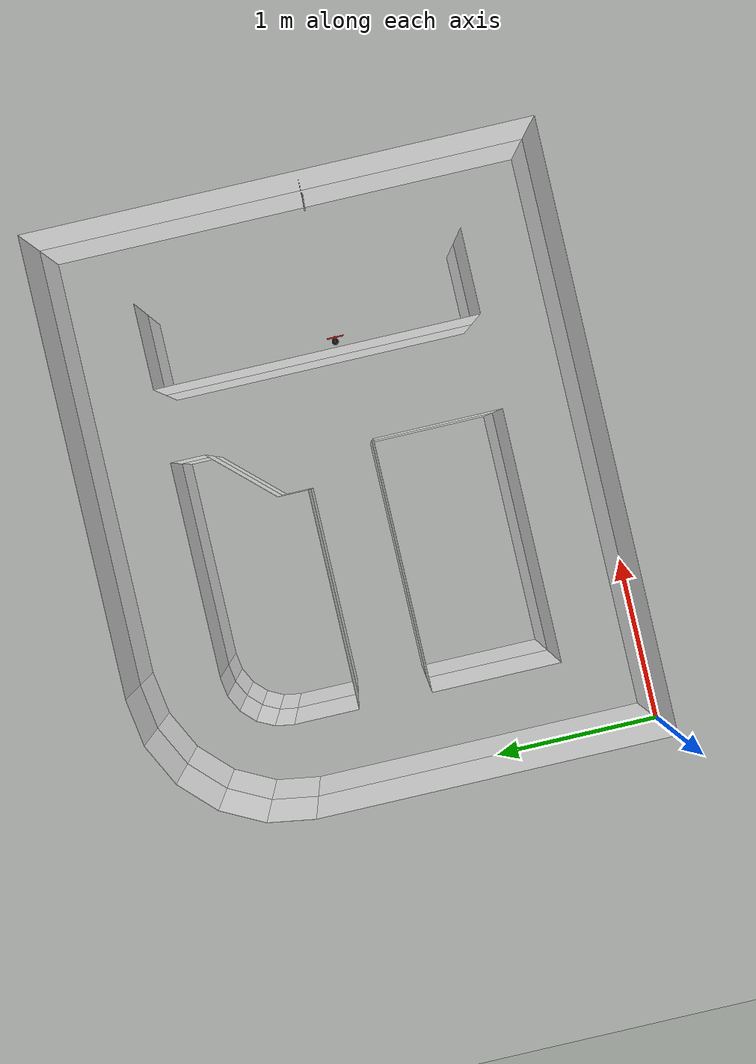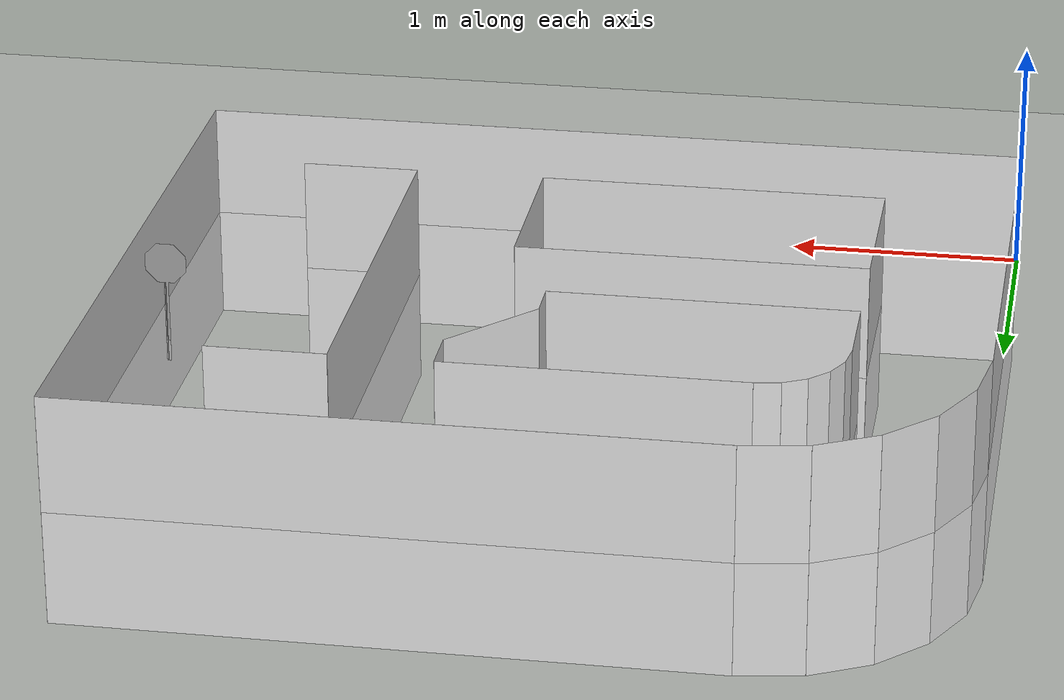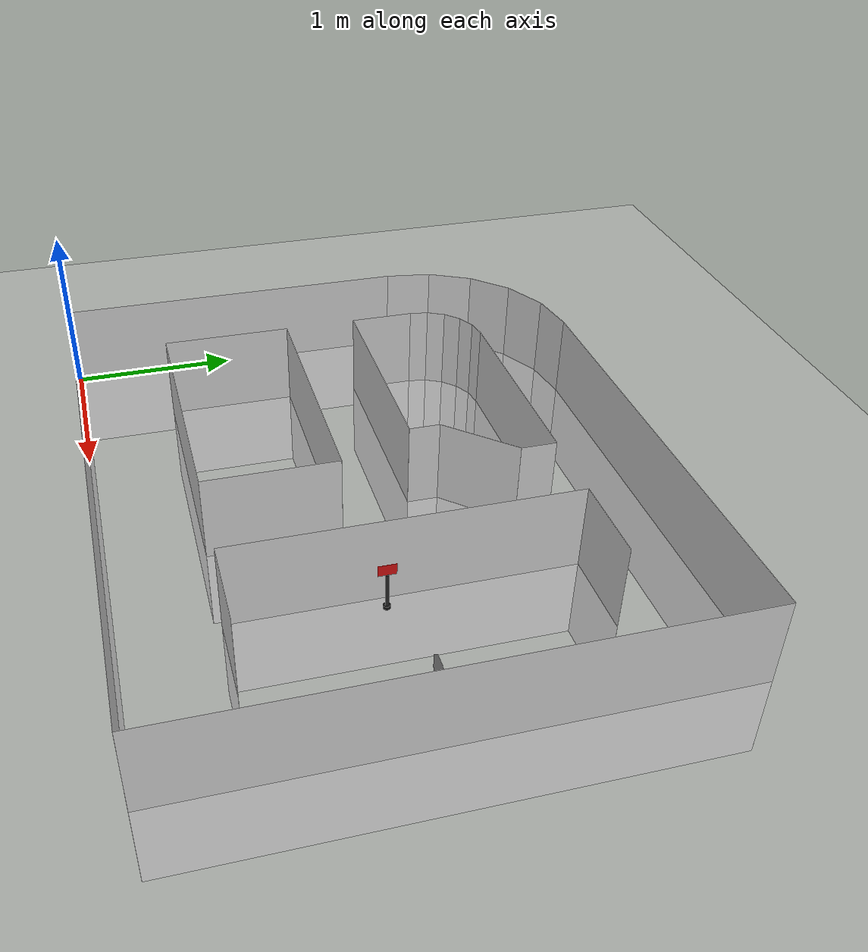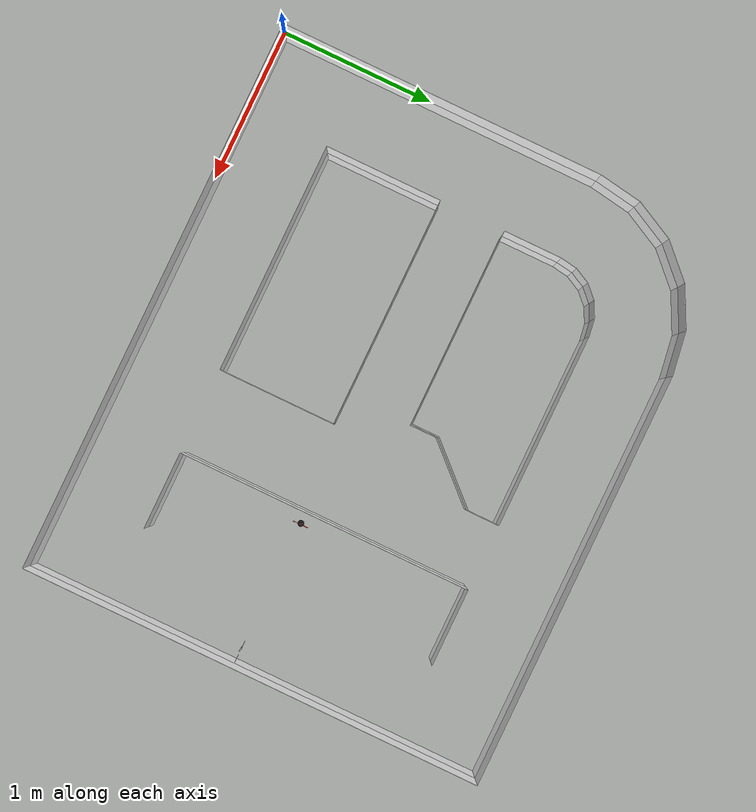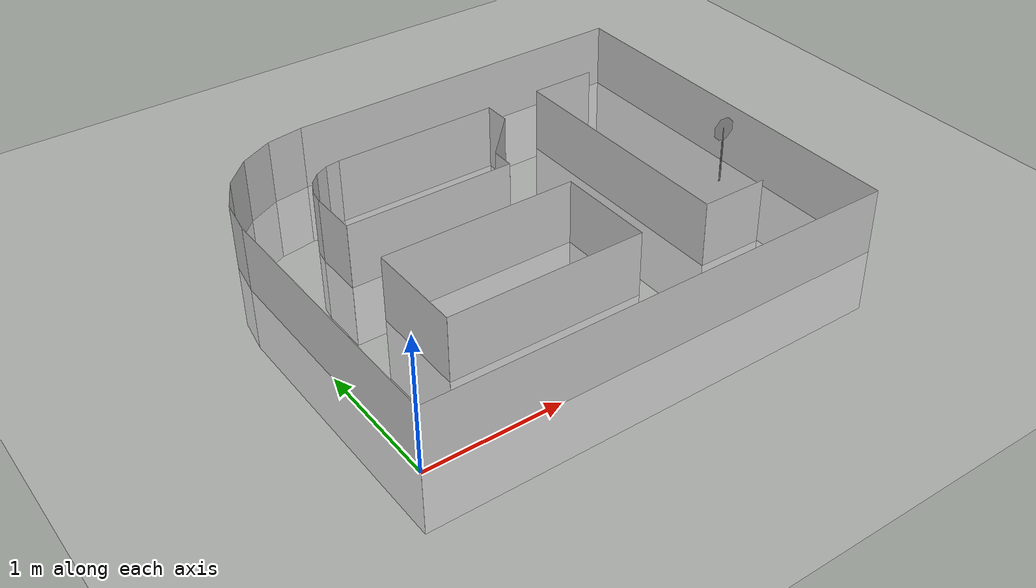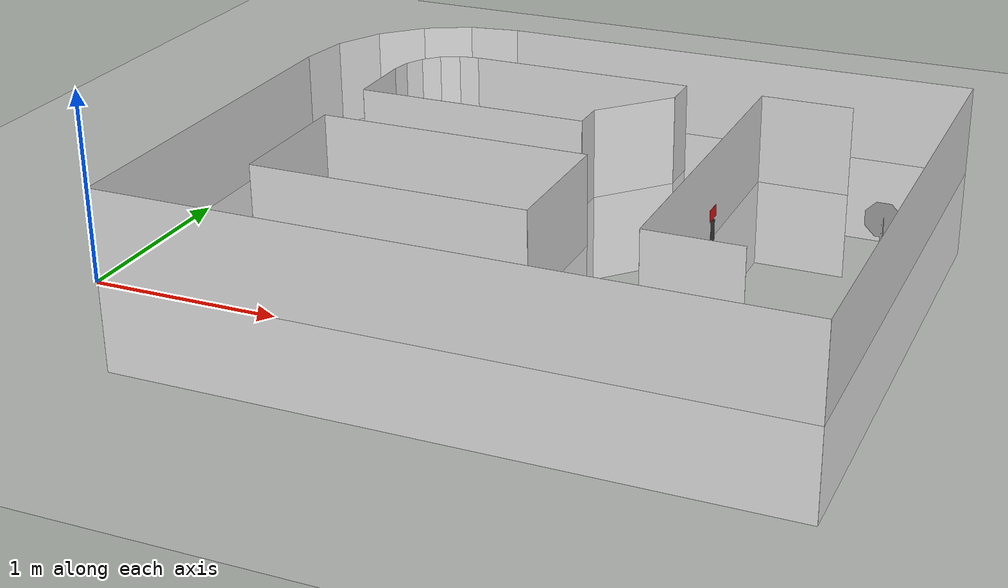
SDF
<sdf version='1.9'>
  <world name='default'>

    <light name='sun' type='directional'>
      <cast_shadows>1</cast_shadows>
      <pose>0 0 10 0 -0 0</pose>
      <diffuse>0.8 0.8 0.8 1</diffuse>
      <specular>0.2 0.2 0.2 1</specular>
      <attenuation>
        <range>1000</range>
        <constant>0.9</constant>
        <linear>0.01</linear>
        <quadratic>0.001</quadratic>
      </attenuation>
      <direction>0.5 -0.5 -1</direction>
    </light>

    <include>
      <uri>https://fuel.gazebosim.org/1.0/OpenRobotics/models/Ground Plane</uri>
    </include>

    <model name='wall_0'>
      <static>1</static>
      <link name='link'>
        <collision name='collision'>
          <geometry>
            <box>
              <size>2.13360426721 0.001 1</size>
            </box>
          </geometry>
        </collision>
        <visual name='visual'>
          <geometry>
            <box>
              <size>2.13360426721 0.001 1</size>
            </box>
          </geometry>
          <material>
            <ambient>1 1 1 1</ambient>
            <diffuse>1 1 1 1</diffuse>
            <specular>.1 .1 .1 .5</specular>
          </material>
        </visual>
      </link>
      <pose>0.0 1.0668021336 0 0 0 1.57079632679</pose>
    </model>

    <model name='wall_1'>
      <static>1</static>
      <link name='link'>
        <collision name='collision'>
          <geometry>
            <box>
              <size>0.286087921841 0.001 1</size>
            </box>
          </geometry>
        </collision>
        <visual name='visual'>
          <geometry>
            <box>
              <size>0.286087921841 0.001 1</size>
            </box>
          </geometry>
          <material>
            <ambient>1 1 1 1</ambient>
            <diffuse>1 1 1 1</diffuse>
            <specular>.1 .1 .1 .5</specular>
          </material>
        </visual>
      </link>
      <pose>0.0223770055039 2.2748871196 0 0 0 1.41371669412</pose>
    </model>

    <model name='wall_2'>
      <static>1</static>
      <link name='link'>
        <collision name='collision'>
          <geometry>
            <box>
              <size>0.286087921841 0.001 1</size>
            </box>
          </geometry>
        </collision>
        <visual name='visual'>
          <geometry>
            <box>
              <size>0.286087921841 0.001 1</size>
            </box>
          </geometry>
          <material>
            <ambient>1 1 1 1</ambient>
            <diffuse>1 1 1 1</diffuse>
            <specular>.1 .1 .1 .5</specular>
          </material>
        </visual>
      </link>
      <pose>0.109694610311 2.54362307442 0 0 0 1.09955742876</pose>
    </model>

    <model name='wall_3'>
      <static>1</static>
      <link name='link'>
        <collision name='collision'>
          <geometry>
            <box>
              <size>0.286087921841 0.001 1</size>
            </box>
          </geometry>
        </collision>
        <visual name='visual'>
          <geometry>
            <box>
              <size>0.286087921841 0.001 1</size>
            </box>
          </geometry>
          <material>
            <ambient>1 1 1 1</ambient>
            <diffuse>1 1 1 1</diffuse>
            <specular>.1 .1 .1 .5</specular>
          </material>
        </visual>
      </link>
      <pose>0.275782564389 2.77222353162 0 0 0 0.785398163397</pose>
    </model>

    <model name='wall_4'>
      <static>1</static>
      <link name='link'>
        <collision name='collision'>
          <geometry>
            <box>
              <size>0.286087921841 0.001 1</size>
            </box>
          </geometry>
        </collision>
        <visual name='visual'>
          <geometry>
            <box>
              <size>0.286087921841 0.001 1</size>
            </box>
          </geometry>
          <material>
            <ambient>1 1 1 1</ambient>
            <diffuse>1 1 1 1</diffuse>
            <specular>.1 .1 .1 .5</specular>
          </material>
        </visual>
      </link>
      <pose>0.50438302159 2.9383114857 0 0 0 0.471238898038</pose>
    </model>

    <model name='wall_5'>
      <static>1</static>
      <link name='link'>
        <collision name='collision'>
          <geometry>
            <box>
              <size>0.286087921841 0.001 1</size>
            </box>
          </geometry>
        </collision>
        <visual name='visual'>
          <geometry>
            <box>
              <size>0.286087921841 0.001 1</size>
            </box>
          </geometry>
          <material>
            <ambient>1 1 1 1</ambient>
            <diffuse>1 1 1 1</diffuse>
            <specular>.1 .1 .1 .5</specular>
          </material>
        </visual>
      </link>
      <pose>0.77311897641 3.02562909051 0 0 0 0.157079632679</pose>
    </model>

    <model name='wall_6'>
      <static>1</static>
      <link name='link'>
        <collision name='collision'>
          <geometry>
            <box>
              <size>2.74320548641 0.001 1</size>
            </box>
          </geometry>
        </collision>
        <visual name='visual'>
          <geometry>
            <box>
              <size>2.74320548641 0.001 1</size>
            </box>
          </geometry>
          <material>
            <ambient>1 1 1 1</ambient>
            <diffuse>1 1 1 1</diffuse>
            <specular>.1 .1 .1 .5</specular>
          </material>
        </visual>
      </link>
      <pose>2.28600457201 3.04800609601 0 0 0 0.0</pose>
    </model>

    <model name='wall_7'>
      <static>1</static>
      <link name='link'>
        <collision name='collision'>
          <geometry>
            <box>
              <size>3.04800609601 0.001 1</size>
            </box>
          </geometry>
        </collision>
        <visual name='visual'>
          <geometry>
            <box>
              <size>3.04800609601 0.001 1</size>
            </box>
          </geometry>
          <material>
            <ambient>1 1 1 1</ambient>
            <diffuse>1 1 1 1</diffuse>
            <specular>.1 .1 .1 .5</specular>
          </material>
        </visual>
      </link>
      <pose>3.65760731521 1.52400304801 0 0 0 -1.57079632679</pose>
    </model>

    <model name='wall_8'>
      <static>1</static>
      <link name='link'>
        <collision name='collision'>
          <geometry>
            <box>
              <size>3.65760731521 0.001 1</size>
            </box>
          </geometry>
        </collision>
        <visual name='visual'>
          <geometry>
            <box>
              <size>3.65760731521 0.001 1</size>
            </box>
          </geometry>
          <material>
            <ambient>1 1 1 1</ambient>
            <diffuse>1 1 1 1</diffuse>
            <specular>.1 .1 .1 .5</specular>
          </material>
        </visual>
      </link>
      <pose>1.82880365761 0.0 0 0 0 3.14159265359</pose>
    </model>

    <model name='wall_9'>
      <static>1</static>
      <link name='link'>
        <collision name='collision'>
          <geometry>
            <box>
              <size>0.762001524003 0.001 1</size>
            </box>
          </geometry>
        </collision>
        <visual name='visual'>
          <geometry>
            <box>
              <size>0.762001524003 0.001 1</size>
            </box>
          </geometry>
          <material>
            <ambient>1 1 1 1</ambient>
            <diffuse>1 1 1 1</diffuse>
            <specular>.1 .1 .1 .5</specular>
          </material>
        </visual>
      </link>
      <pose>0.558801117602 0.939801879604 0 0 0 1.57079632679</pose>
    </model>

    <model name='wall_10'>
      <static>1</static>
      <link name='link'>
        <collision name='collision'>
          <geometry>
            <box>
              <size>1.49860299721 0.001 1</size>
            </box>
          </geometry>
        </collision>
        <visual name='visual'>
          <geometry>
            <box>
              <size>1.49860299721 0.001 1</size>
            </box>
          </geometry>
          <material>
            <ambient>1 1 1 1</ambient>
            <diffuse>1 1 1 1</diffuse>
            <specular>.1 .1 .1 .5</specular>
          </material>
        </visual>
      </link>
      <pose>1.30810261621 1.32080264161 0 0 0 0.0</pose>
    </model>

    <model name='wall_11'>
      <static>1</static>
      <link name='link'>
        <collision name='collision'>
          <geometry>
            <box>
              <size>0.762001524003 0.001 1</size>
            </box>
          </geometry>
        </collision>
        <visual name='visual'>
          <geometry>
            <box>
              <size>0.762001524003 0.001 1</size>
            </box>
          </geometry>
          <material>
            <ambient>1 1 1 1</ambient>
            <diffuse>1 1 1 1</diffuse>
            <specular>.1 .1 .1 .5</specular>
          </material>
        </visual>
      </link>
      <pose>2.05740411481 0.939801879604 0 0 0 -1.57079632679</pose>
    </model>

    <model name='wall_12'>
      <static>1</static>
      <link name='link'>
        <collision name='collision'>
          <geometry>
            <box>
              <size>1.49860299721 0.001 1</size>
            </box>
          </geometry>
        </collision>
        <visual name='visual'>
          <geometry>
            <box>
              <size>1.49860299721 0.001 1</size>
            </box>
          </geometry>
          <material>
            <ambient>1 1 1 1</ambient>
            <diffuse>1 1 1 1</diffuse>
            <specular>.1 .1 .1 .5</specular>
          </material>
        </visual>
      </link>
      <pose>1.30810261621 0.558801117602 0 0 0 3.14159265359</pose>
    </model>

    <model name='wall_13'>
      <static>1</static>
      <link name='link'>
        <collision name='collision'>
          <geometry>
            <box>
              <size>0.381000762002 0.001 1</size>
            </box>
          </geometry>
        </collision>
        <visual name='visual'>
          <geometry>
            <box>
              <size>0.381000762002 0.001 1</size>
            </box>
          </geometry>
          <material>
            <ambient>1 1 1 1</ambient>
            <diffuse>1 1 1 1</diffuse>
            <specular>.1 .1 .1 .5</specular>
          </material>
        </visual>
      </link>
      <pose>0.558801117602 1.94310388621 0 0 0 1.57079632679</pose>
    </model>

    <model name='wall_14'>
      <static>1</static>
      <link name='link'>
        <collision name='collision'>
          <geometry>
            <box>
              <size>0.111256414049 0.001 1</size>
            </box>
          </geometry>
        </collision>
        <visual name='visual'>
          <geometry>
            <box>
              <size>0.111256414049 0.001 1</size>
            </box>
          </geometry>
          <material>
            <ambient>1 1 1 1</ambient>
            <diffuse>1 1 1 1</diffuse>
            <specular>.1 .1 .1 .5</specular>
          </material>
        </visual>
      </link>
      <pose>0.567503286409 2.1885475987 0 0 0 1.41371669412</pose>
    </model>

    <model name='wall_15'>
      <static>1</static>
      <link name='link'>
        <collision name='collision'>
          <geometry>
            <box>
              <size>0.111256414049 0.001 1</size>
            </box>
          </geometry>
        </collision>
        <visual name='visual'>
          <geometry>
            <box>
              <size>0.111256414049 0.001 1</size>
            </box>
          </geometry>
          <material>
            <ambient>1 1 1 1</ambient>
            <diffuse>1 1 1 1</diffuse>
            <specular>.1 .1 .1 .5</specular>
          </material>
        </visual>
      </link>
      <pose>0.601460132723 2.29305602557 0 0 0 1.09955742876</pose>
    </model>

    <model name='wall_16'>
      <static>1</static>
      <link name='link'>
        <collision name='collision'>
          <geometry>
            <box>
              <size>0.111256414049 0.001 1</size>
            </box>
          </geometry>
        </collision>
        <visual name='visual'>
          <geometry>
            <box>
              <size>0.111256414049 0.001 1</size>
            </box>
          </geometry>
          <material>
            <ambient>1 1 1 1</ambient>
            <diffuse>1 1 1 1</diffuse>
            <specular>.1 .1 .1 .5</specular>
          </material>
        </visual>
      </link>
      <pose>0.666049892642 2.38195620337 0 0 0 0.785398163397</pose>
    </model>

    <model name='wall_17'>
      <static>1</static>
      <link name='link'>
        <collision name='collision'>
          <geometry>
            <box>
              <size>0.111256414049 0.001 1</size>
            </box>
          </geometry>
        </collision>
        <visual name='visual'>
          <geometry>
            <box>
              <size>0.111256414049 0.001 1</size>
            </box>
          </geometry>
          <material>
            <ambient>1 1 1 1</ambient>
            <diffuse>1 1 1 1</diffuse>
            <specular>.1 .1 .1 .5</specular>
          </material>
        </visual>
      </link>
      <pose>0.754950070443 2.44654596329 0 0 0 0.471238898038</pose>
    </model>

    <model name='wall_18'>
      <static>1</static>
      <link name='link'>
        <collision name='collision'>
          <geometry>
            <box>
              <size>0.111256414049 0.001 1</size>
            </box>
          </geometry>
        </collision>
        <visual name='visual'>
          <geometry>
            <box>
              <size>0.111256414049 0.001 1</size>
            </box>
          </geometry>
          <material>
            <ambient>1 1 1 1</ambient>
            <diffuse>1 1 1 1</diffuse>
            <specular>.1 .1 .1 .5</specular>
          </material>
        </visual>
      </link>
      <pose>0.859458497317 2.4805028096 0 0 0 0.157079632679</pose>
    </model>

    <model name='wall_19'>
      <static>1</static>
      <link name='link'>
        <collision name='collision'>
          <geometry>
            <box>
              <size>1.27000254001 0.001 1</size>
            </box>
          </geometry>
        </collision>
        <visual name='visual'>
          <geometry>
            <box>
              <size>1.27000254001 0.001 1</size>
            </box>
          </geometry>
          <material>
            <ambient>1 1 1 1</ambient>
            <diffuse>1 1 1 1</diffuse>
            <specular>.1 .1 .1 .5</specular>
          </material>
        </visual>
      </link>
      <pose>1.54940309881 2.48920497841 0 0 0 0.0</pose>
    </model>

    <model name='wall_20'>
      <static>1</static>
      <link name='link'>
        <collision name='collision'>
          <geometry>
            <box>
              <size>0.203200406401 0.001 1</size>
            </box>
          </geometry>
        </collision>
        <visual name='visual'>
          <geometry>
            <box>
              <size>0.203200406401 0.001 1</size>
            </box>
          </geometry>
          <material>
            <ambient>1 1 1 1</ambient>
            <diffuse>1 1 1 1</diffuse>
            <specular>.1 .1 .1 .5</specular>
          </material>
        </visual>
      </link>
      <pose>2.18440436881 2.38760477521 0 0 0 -1.57079632679</pose>
    </model>

    <model name='wall_21'>
      <static>1</static>
      <link name='link'>
        <collision name='collision'>
          <geometry>
            <box>
              <size>0.485267289168 0.001 1</size>
            </box>
          </geometry>
        </collision>
        <visual name='visual'>
          <geometry>
            <box>
              <size>0.485267289168 0.001 1</size>
            </box>
          </geometry>
          <material>
            <ambient>1 1 1 1</ambient>
            <diffuse>1 1 1 1</diffuse>
            <specular>.1 .1 .1 .5</specular>
          </material>
        </visual>
      </link>
      <pose>2.01930403861 2.10820421641 0 0 0 -2.31917437432</pose>
    </model>

    <model name='wall_22'>
      <static>1</static>
      <link name='link'>
        <collision name='collision'>
          <geometry>
            <box>
              <size>0.177800355601 0.001 1</size>
            </box>
          </geometry>
        </collision>
        <visual name='visual'>
          <geometry>
            <box>
              <size>0.177800355601 0.001 1</size>
            </box>
          </geometry>
          <material>
            <ambient>1 1 1 1</ambient>
            <diffuse>1 1 1 1</diffuse>
            <specular>.1 .1 .1 .5</specular>
          </material>
        </visual>
      </link>
      <pose>1.85420370841 1.84150368301 0 0 0 -1.57079632679</pose>
    </model>

    <model name='wall_23'>
      <static>1</static>
      <link name='link'>
        <collision name='collision'>
          <geometry>
            <box>
              <size>1.29540259081 0.001 1</size>
            </box>
          </geometry>
        </collision>
        <visual name='visual'>
          <geometry>
            <box>
              <size>1.29540259081 0.001 1</size>
            </box>
          </geometry>
          <material>
            <ambient>1 1 1 1</ambient>
            <diffuse>1 1 1 1</diffuse>
            <specular>.1 .1 .1 .5</specular>
          </material>
        </visual>
      </link>
      <pose>1.206502413 1.75260350521 0 0 0 3.14159265359</pose>
    </model>

    <model name='wall_24'>
      <static>1</static>
      <link name='link'>
        <collision name='collision'>
          <geometry>
            <box>
              <size>0.508001016002 0.001 1</size>
            </box>
          </geometry>
        </collision>
        <visual name='visual'>
          <geometry>
            <box>
              <size>0.508001016002 0.001 1</size>
            </box>
          </geometry>
          <material>
            <ambient>1 1 1 1</ambient>
            <diffuse>1 1 1 1</diffuse>
            <specular>.1 .1 .1 .5</specular>
          </material>
        </visual>
      </link>
      <pose>2.87020574041 2.48920497841 0 0 0 0.0</pose>
    </model>

    <model name='wall_25'>
      <static>1</static>
      <link name='link'>
        <collision name='collision'>
          <geometry>
            <box>
              <size>0.508001016002 0.001 1</size>
            </box>
          </geometry>
        </collision>
        <visual name='visual'>
          <geometry>
            <box>
              <size>0.508001016002 0.001 1</size>
            </box>
          </geometry>
          <material>
            <ambient>1 1 1 1</ambient>
            <diffuse>1 1 1 1</diffuse>
            <specular>.1 .1 .1 .5</specular>
          </material>
        </visual>
      </link>
      <pose>2.87020574041 0.558801117602 0 0 0 3.14159265359</pose>
    </model>

    <model name='wall_26'>
      <static>1</static>
      <link name='link'>
        <collision name='collision'>
          <geometry>
            <box>
              <size>1.93040386081 0.001 1</size>
            </box>
          </geometry>
        </collision>
        <visual name='visual'>
          <geometry>
            <box>
              <size>1.93040386081 0.001 1</size>
            </box>
          </geometry>
          <material>
            <ambient>1 1 1 1</ambient>
            <diffuse>1 1 1 1</diffuse>
            <specular>.1 .1 .1 .5</specular>
          </material>
        </visual>
      </link>
      <pose>2.61620523241 1.52400304801 0 0 0 1.57079632679</pose>
    </model>

    <model name='Stop Sign'>
      <link name='link'>
        <collision name='stopsign_collision'>
          <geometry>
            <mesh>
              <uri>stop_sign/stopsign.obj</uri>
              <scale>.3 .3 .3</scale>
            </mesh>
          </geometry>
        </collision>
        <visual name='visual'>
          <geometry>
            <mesh>
              <uri>stop_sign/stopsign.obj</uri>
              <scale>.3 .3 .3</scale>
            </mesh>
          </geometry>
        </visual>
        <self_collide>0</self_collide>
        <inertial>
          <inertia>
            <ixx>1</ixx>
            <ixy>0</ixy>
            <ixz>0</ixz>
            <iyy>1</iyy>
            <iyz>0</iyz>
            <izz>1</izz>
          </inertia>
          <mass>1</mass>
        </inertial>
        <kinematic>0</kinematic>
        <gravity>1</gravity>
      </link>
      <pose>3.55 1.4 -.1 1.570796 0 3.141593</pose>
    </model>

    <model name='flag'>
      <link name='plate'>
        <pose>0 0 0.2425 0 0 0</pose>
        <collision name='collision'>
          <geometry>
            <box>
              <size>0.001 0.1 0.065</size>
            </box>
          </geometry>
          <max_contacts>10</max_contacts>
          <surface>
            <contact>
              <ode/>
            </contact>
            <bounce/>
            <friction>
              <torsional>
                <ode/>
              </torsional>
              <ode>
                <mu>1</mu>
                <mu2>1</mu2>
              </ode>
            </friction>
          </surface>
        </collision>
        <visual name='visual'>
          <geometry>
            <box>
              <size>0.001 0.1 0.065</size>
            </box>
          </geometry>
          <material>
            <ambient>1 0.1 0.1 1</ambient>
            <diffuse>1 0.1 0.1 1</diffuse>
            <specular>0.1 0.1 0.1 1</specular>
          </material>
        </visual>
        <self_collide>0</self_collide>
        <inertial>
          <inertia>
            <ixx>0.1</ixx>
            <ixy>0</ixy>
            <ixz>0</ixz>
            <iyy>0.1</iyy>
            <iyz>0</iyz>
            <izz>0.1</izz>
          </inertia>
          <mass>0.1</mass>
        </inertial>
        <kinematic>0</kinematic>
        <gravity>1</gravity>
      </link>
      <link name='pole'>
        <pose>0 0 0.11 0 0 0</pose>
        <collision name='collision'>
          <geometry>
            <cylinder>
              <radius>0.01</radius>
              <length>0.2</length>
            </cylinder>
          </geometry>
          <max_contacts>10</max_contacts>
          <surface>
            <contact>
              <ode/>
            </contact>
            <bounce/>
            <friction>
              <torsional>
                <coefficient>1</coefficient>
              </torsional>
              <ode>
                <mu>1</mu>
                <mu2>1</mu2>
              </ode>
            </friction>
          </surface>
        </collision>
        <visual name='visual'>
          <geometry>
            <cylinder>
              <radius>0.01</radius>
              <length>0.2</length>
            </cylinder>
          </geometry>
          <material>
            <ambient>0.2 0.2 0.2 1</ambient>
            <diffuse>0.2 0.2 0.2 1</diffuse>
            <specular>0.2 0.2 0.2 1</specular>
          </material>
        </visual>
        <self_collide>0</self_collide>
        <inertial>
          <inertia>
            <ixx>1</ixx>
            <ixy>0</ixy>
            <ixz>0</ixz>
            <iyy>1</iyy>
            <iyz>0</iyz>
            <izz>1</izz>
          </inertia>
          <mass>1</mass>
        </inertial>
        <kinematic>0</kinematic>
        <gravity>1</gravity>
      </link>
      <link name='base'>
        <collision name='collision'>
          <geometry>
            <cylinder>
              <radius>0.02</radius>
              <length>0.02</length>
            </cylinder>
          </geometry>
          <max_contacts>10</max_contacts>
          <surface>
            <contact>
              <ode/>
            </contact>
            <bounce/>
            <friction>
              <torsional>
                <ode/>
              </torsional>
              <ode>
                <mu>0.01</mu>
                <mu2>0.01</mu2>
              </ode>
            </friction>
          </surface>
        </collision>
        <visual name='visual'>
          <geometry>
            <cylinder>
              <radius>0.02</radius>
              <length>0.02</length>
            </cylinder>
          </geometry>
          <material>
            <ambient>0.1 0.1 0.1 1</ambient>
            <diffuse>0.1 0.1 0.1 1</diffuse>
            <specular>0.01 0.01 0.01 1</specular>
          </material>
        </visual>
        <self_collide>0</self_collide>
        <inertial>
          <inertia>
            <ixx>0.1</ixx>
            <ixy>0</ixy>
            <ixz>0</ixz>
            <iyy>0.1</iyy>
            <iyz>0</iyz>
            <izz>0.1</izz>
          </inertia>
          <mass>0.1</mass>
        </inertial>
        <kinematic>0</kinematic>
        <gravity>0</gravity>
      </link>
      <joint name='base_pole' type="fixed">
        <parent>base</parent>
        <child>pole</child>
        <pose>0 0 0.02 0 0 0</pose>
      </joint>
      <joint name='pole_plate' type="fixed">
        <parent>pole</parent>
        <child>plate</child>
        <pose>0 0 0.1 0 0 0</pose>
      </joint>
      <pose>2.7 1.4 0.01 0.0 0.0 3.14159</pose>
    </model>

    <gravity>0 0 -9.8</gravity>
    <magnetic_field>6e-06 2.3e-05 -4.2e-05</magnetic_field>
    <atmosphere type='adiabatic'/>
    <physics name='default_physics' type='ignored'>
      <max_step_size>0.001</max_step_size>
      <real_time_factor>1</real_time_factor>
    </physics>
    <scene>
      <ambient>0.4 0.4 0.4 1</ambient>
      <background>0.7 0.7 0.7 1</background>
      <shadows>1</shadows>
    </scene>
    <spherical_coordinates>
      <surface_model>EARTH_WGS84</surface_model>
      <latitude_deg>0</latitude_deg>
      <longitude_deg>0</longitude_deg>
      <elevation>0</elevation>
      <heading_deg>0</heading_deg>
    </spherical_coordinates>
    <gui fullscreen='0'>
      <camera name='user_camera'>
        <pose>5 -5 2 0 0.275643 2.35619</pose>
        <view_controller>orbit</view_controller>
        <projection_type>perspective</projection_type>
      </camera>
    </gui>
  </world>
</sdf>
